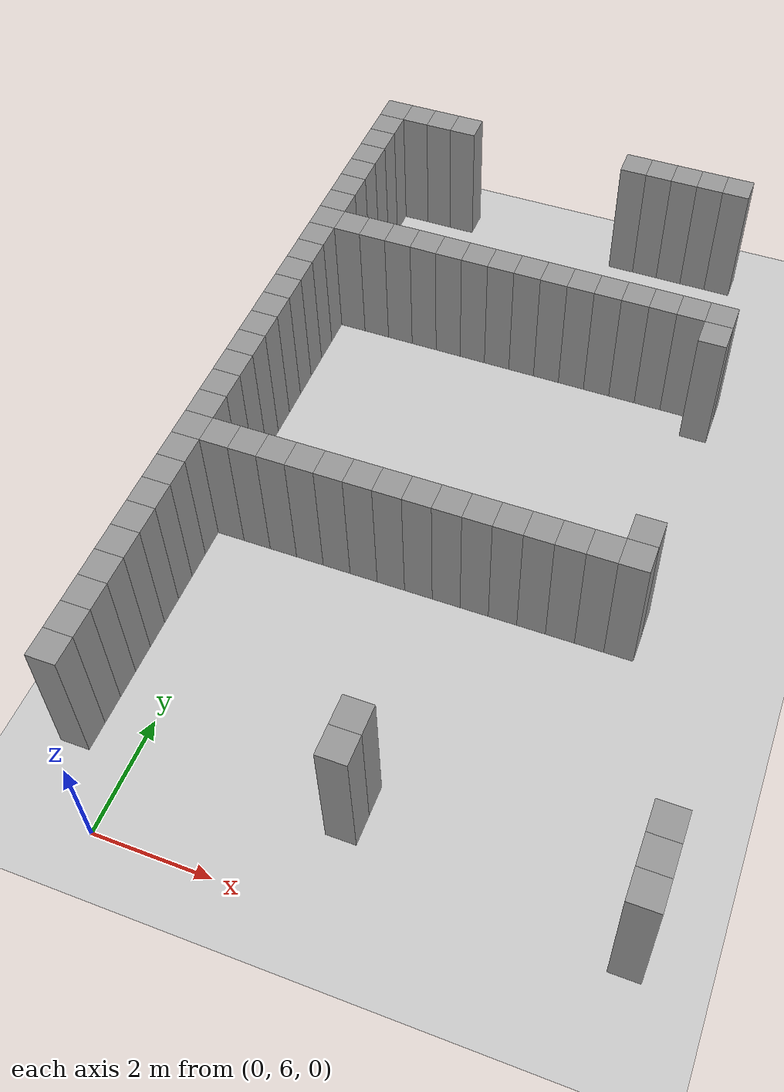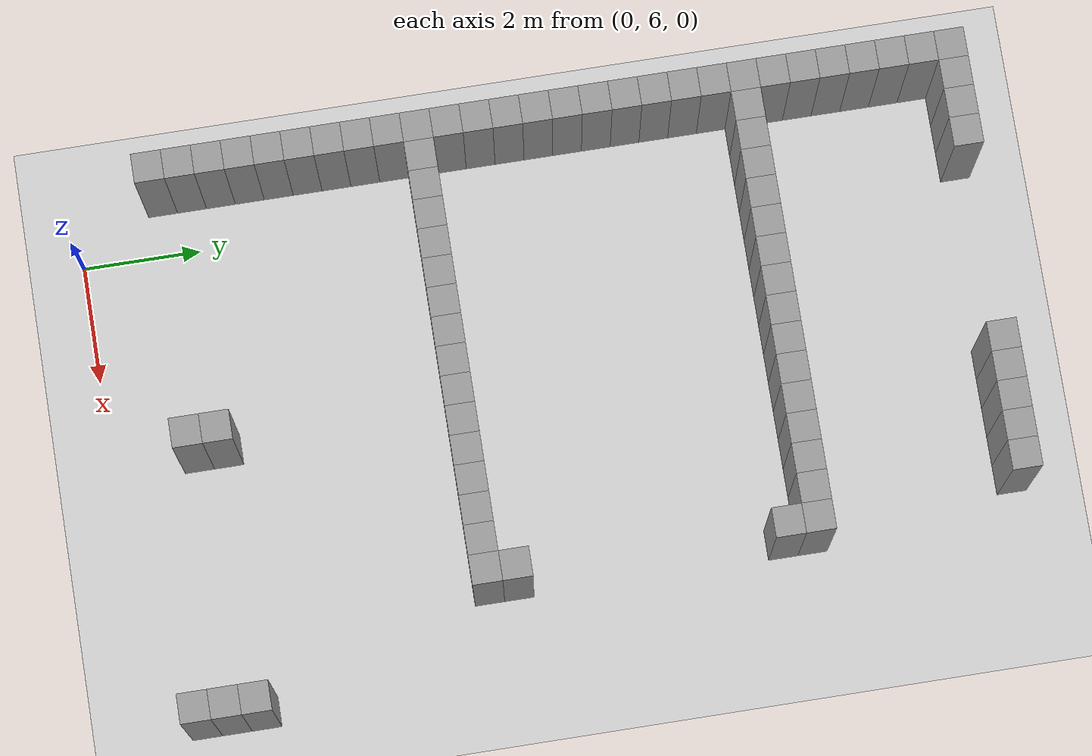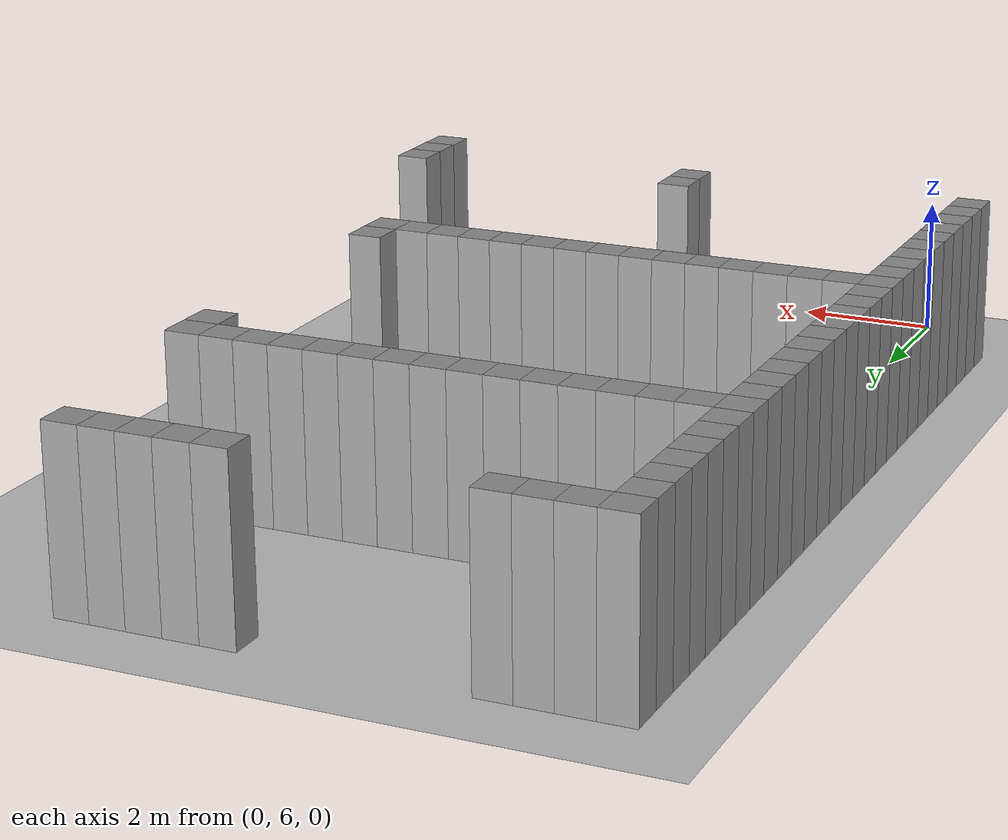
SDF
<sdf version="1.7">
 <world name="default">
  <model name="ground_plane">
   <static>1</static>
   <link name="link">
    <collision name="collision">
     <geometry><plane><normal>0 0 1</normal><size>100 100</size></plane></geometry>
     <surface>
      <contact><collide_bitmask>65535</collide_bitmask></contact>
      <friction><ode><mu>100</mu><mu2>50</mu2></ode></friction>
     </surface>
    </collision>
    <visual name="visual">
     <cast_shadows>0</cast_shadows>
     <geometry><plane><normal>0 0 1</normal><size>100 100</size></plane></geometry>
     <material>
      <script><uri>file://media/materials/scripts/gazebo.material</uri><name>Gazebo/Grey</name></script>
     </material>
    </visual>
   </link>
  </model>
  <model name="image1">
   <pose>-0.980925 -1.04264 0 0 -0 0</pose>
   <link name="Wall_17">
    <collision name="Wall_17_Collision">
     <geometry><box><size>0.5 0.5 2.5</size></box></geometry>
     <pose>0 0 1.25 0 -0 0</pose>
    </collision>
    <visual name="Wall_17_Visual">
     <pose>0 0 1.25 0 -0 0</pose>
     <geometry><box><size>0.5 0.5 2.5</size></box></geometry>
     <material>
      <script><uri>file://media/materials/scripts/gazebo.material</uri><name>Gazebo/Grey</name></script>
      <ambient>1 1 1 1</ambient>
     </material>
     <meta><layer>0</layer></meta>
    </visual>
    <pose>0 8.5 0 0 -0 0</pose>
   </link>
   <link name="Wall_18">
    <collision name="Wall_18_Collision">
     <geometry><box><size>0.5 0.5 2.5</size></box></geometry>
     <pose>0 0 1.25 0 -0 0</pose>
    </collision>
    <visual name="Wall_18_Visual">
     <pose>0 0 1.25 0 -0 0</pose>
     <geometry><box><size>0.5 0.5 2.5</size></box></geometry>
     <material>
      <script><uri>file://media/materials/scripts/gazebo.material</uri><name>Gazebo/Grey</name></script>
      <ambient>1 1 1 1</ambient>
     </material>
     <meta><layer>0</layer></meta>
    </visual>
    <pose>0 9 0 0 -0 0</pose>
   </link>
   <link name="Wall_19">
    <collision name="Wall_19_Collision">
     <geometry><box><size>0.5 0.5 2.5</size></box></geometry>
     <pose>0 0 1.25 0 -0 0</pose>
    </collision>
    <visual name="Wall_19_Visual">
     <pose>0 0 1.25 0 -0 0</pose>
     <geometry><box><size>0.5 0.5 2.5</size></box></geometry>
     <material>
      <script><uri>file://media/materials/scripts/gazebo.material</uri><name>Gazebo/Grey</name></script>
      <ambient>1 1 1 1</ambient>
     </material>
     <meta><layer>0</layer></meta>
    </visual>
    <pose>0 9.5 0 0 -0 0</pose>
   </link>
   <link name="Wall_20">
    <collision name="Wall_20_Collision">
     <geometry><box><size>0.5 0.5 2.5</size></box></geometry>
     <pose>0 0 1.25 0 -0 0</pose>
    </collision>
    <visual name="Wall_20_Visual">
     <pose>0 0 1.25 0 -0 0</pose>
     <geometry><box><size>0.5 0.5 2.5</size></box></geometry>
     <material>
      <script><uri>file://media/materials/scripts/gazebo.material</uri><name>Gazebo/Grey</name></script>
      <ambient>1 1 1 1</ambient>
     </material>
     <meta><layer>0</layer></meta>
    </visual>
    <pose>0 10 0 0 -0 0</pose>
   </link>
   <link name="Wall_21">
    <collision name="Wall_21_Collision">
     <geometry><box><size>0.5 0.5 2.5</size></box></geometry>
     <pose>0 0 1.25 0 -0 0</pose>
    </collision>
    <visual name="Wall_21_Visual">
     <pose>0 0 1.25 0 -0 0</pose>
     <geometry><box><size>0.5 0.5 2.5</size></box></geometry>
     <material>
      <script><uri>file://media/materials/scripts/gazebo.material</uri><name>Gazebo/Grey</name></script>
      <ambient>1 1 1 1</ambient>
     </material>
     <meta><layer>0</layer></meta>
    </visual>
    <pose>0 10.5 0 0 -0 0</pose>
   </link>
   <link name="Wall_22">
    <collision name="Wall_22_Collision">
     <geometry><box><size>0.5 0.5 2.5</size></box></geometry>
     <pose>0 0 1.25 0 -0 0</pose>
    </collision>
    <visual name="Wall_22_Visual">
     <pose>0 0 1.25 0 -0 0</pose>
     <geometry><box><size>0.5 0.5 2.5</size></box></geometry>
     <material>
      <script><uri>file://media/materials/scripts/gazebo.material</uri><name>Gazebo/Grey</name></script>
      <ambient>1 1 1 1</ambient>
     </material>
     <meta><layer>0</layer></meta>
    </visual>
    <pose>0 11 0 0 -0 0</pose>
   </link>
   <link name="Wall_23">
    <collision name="Wall_23_Collision">
     <geometry><box><size>0.5 0.5 2.5</size></box></geometry>
     <pose>0 0 1.25 0 -0 0</pose>
    </collision>
    <visual name="Wall_23_Visual">
     <pose>0 0 1.25 0 -0 0</pose>
     <geometry><box><size>0.5 0.5 2.5</size></box></geometry>
     <material>
      <script><uri>file://media/materials/scripts/gazebo.material</uri><name>Gazebo/Grey</name></script>
      <ambient>1 1 1 1</ambient>
     </material>
     <meta><layer>0</layer></meta>
    </visual>
    <pose>0 11.5 0 0 -0 0</pose>
   </link>
   <link name="Wall_24">
    <collision name="Wall_24_Collision">
     <geometry><box><size>0.5 0.5 2.5</size></box></geometry>
     <pose>0 0 1.25 0 -0 0</pose>
    </collision>
    <visual name="Wall_24_Visual">
     <pose>0 0 1.25 0 -0 0</pose>
     <geometry><box><size>0.5 0.5 2.5</size></box></geometry>
     <material>
      <script><uri>file://media/materials/scripts/gazebo.material</uri><name>Gazebo/Grey</name></script>
      <ambient>1 1 1 1</ambient>
     </material>
     <meta><layer>0</layer></meta>
    </visual>
    <pose>0 12 0 0 -0 0</pose>
   </link>
   <link name="Wall_25">
    <collision name="Wall_25_Collision">
     <geometry><box><size>0.5 0.5 2.5</size></box></geometry>
     <pose>0 0 1.25 0 -0 0</pose>
    </collision>
    <visual name="Wall_25_Visual">
     <pose>0 0 1.25 0 -0 0</pose>
     <geometry><box><size>0.5 0.5 2.5</size></box></geometry>
     <material>
      <script><uri>file://media/materials/scripts/gazebo.material</uri><name>Gazebo/Grey</name></script>
      <ambient>1 1 1 1</ambient>
     </material>
     <meta><layer>0</layer></meta>
    </visual>
    <pose>0 12.5 0 0 -0 0</pose>
   </link>
   <link name="Wall_26">
    <collision name="Wall_26_Collision">
     <geometry><box><size>0.5 0.5 2.5</size></box></geometry>
     <pose>0 0 1.25 0 -0 0</pose>
    </collision>
    <visual name="Wall_26_Visual">
     <pose>0 0 1.25 0 -0 0</pose>
     <geometry><box><size>0.5 0.5 2.5</size></box></geometry>
     <material>
      <script><uri>file://media/materials/scripts/gazebo.material</uri><name>Gazebo/Grey</name></script>
      <ambient>1 1 1 1</ambient>
     </material>
     <meta><layer>0</layer></meta>
    </visual>
    <pose>0 13 0 0 -0 0</pose>
   </link>
   <link name="Wall_27">
    <collision name="Wall_27_Collision">
     <geometry><box><size>0.5 0.5 2.5</size></box></geometry>
     <pose>0 0 1.25 0 -0 0</pose>
    </collision>
    <visual name="Wall_27_Visual">
     <pose>0 0 1.25 0 -0 0</pose>
     <geometry><box><size>0.5 0.5 2.5</size></box></geometry>
     <material>
      <script><uri>file://media/materials/scripts/gazebo.material</uri><name>Gazebo/Grey</name></script>
      <ambient>1 1 1 1</ambient>
     </material>
     <meta><layer>0</layer></meta>
    </visual>
    <pose>0 13.5 0 0 -0 0</pose>
   </link>
   <link name="Wall_28">
    <collision name="Wall_28_Collision">
     <geometry><box><size>0.5 0.5 2.5</size></box></geometry>
     <pose>0 0 1.25 0 -0 0</pose>
    </collision>
    <visual name="Wall_28_Visual">
     <pose>0 0 1.25 0 -0 0</pose>
     <geometry><box><size>0.5 0.5 2.5</size></box></geometry>
     <material>
      <script><uri>file://media/materials/scripts/gazebo.material</uri><name>Gazebo/Grey</name></script>
      <ambient>1 1 1 1</ambient>
     </material>
     <meta><layer>0</layer></meta>
    </visual>
    <pose>0 14 0 0 -0 0</pose>
   </link>
   <link name="Wall_29">
    <collision name="Wall_29_Collision">
     <geometry><box><size>0.5 0.5 2.5</size></box></geometry>
     <pose>0 0 1.25 0 -0 0</pose>
    </collision>
    <visual name="Wall_29_Visual">
     <pose>0 0 1.25 0 -0 0</pose>
     <geometry><box><size>0.5 0.5 2.5</size></box></geometry>
     <material>
      <script><uri>file://media/materials/scripts/gazebo.material</uri><name>Gazebo/Grey</name></script>
      <ambient>1 1 1 1</ambient>
     </material>
     <meta><layer>0</layer></meta>
    </visual>
    <pose>0 14.5 0 0 -0 0</pose>
   </link>
   <link name="Wall_30">
    <collision name="Wall_30_Collision">
     <geometry><box><size>0.5 0.5 2.5</size></box></geometry>
     <pose>0 0 1.25 0 -0 0</pose>
    </collision>
    <visual name="Wall_30_Visual">
     <pose>0 0 1.25 0 -0 0</pose>
     <geometry><box><size>0.5 0.5 2.5</size></box></geometry>
     <material>
      <script><uri>file://media/materials/scripts/gazebo.material</uri><name>Gazebo/Grey</name></script>
      <ambient>1 1 1 1</ambient>
     </material>
     <meta><layer>0</layer></meta>
    </visual>
    <pose>0 15 0 0 -0 0</pose>
   </link>
   <link name="Wall_31">
    <collision name="Wall_31_Collision">
     <geometry><box><size>0.5 0.5 2.5</size></box></geometry>
     <pose>0 0 1.25 0 -0 0</pose>
    </collision>
    <visual name="Wall_31_Visual">
     <pose>0 0 1.25 0 -0 0</pose>
     <geometry><box><size>0.5 0.5 2.5</size></box></geometry>
     <material>
      <script><uri>file://media/materials/scripts/gazebo.material</uri><name>Gazebo/Grey</name></script>
      <ambient>1 1 1 1</ambient>
     </material>
     <meta><layer>0</layer></meta>
    </visual>
    <pose>0 15.5 0 0 -0 0</pose>
   </link>
   <link name="Wall_32">
    <collision name="Wall_32_Collision">
     <geometry><box><size>0.5 0.5 2.5</size></box></geometry>
     <pose>0 0 1.25 0 -0 0</pose>
    </collision>
    <visual name="Wall_32_Visual">
     <pose>0 0 1.25 0 -0 0</pose>
     <geometry><box><size>0.5 0.5 2.5</size></box></geometry>
     <material>
      <script><uri>file://media/materials/scripts/gazebo.material</uri><name>Gazebo/Grey</name></script>
      <ambient>1 1 1 1</ambient>
     </material>
     <meta><layer>0</layer></meta>
    </visual>
    <pose>0 16 0 0 -0 0</pose>
   </link>
   <link name="Wall_33">
    <collision name="Wall_33_Collision">
     <geometry><box><size>0.5 0.5 2.5</size></box></geometry>
     <pose>0 0 1.25 0 -0 0</pose>
    </collision>
    <visual name="Wall_33_Visual">
     <pose>0 0 1.25 0 -0 0</pose>
     <geometry><box><size>0.5 0.5 2.5</size></box></geometry>
     <material>
      <script><uri>file://media/materials/scripts/gazebo.material</uri><name>Gazebo/Grey</name></script>
      <ambient>1 1 1 1</ambient>
     </material>
     <meta><layer>0</layer></meta>
    </visual>
    <pose>0 16.5 0 0 -0 0</pose>
   </link>
   <link name="Wall_34">
    <collision name="Wall_34_Collision">
     <geometry><box><size>0.5 0.5 2.5</size></box></geometry>
     <pose>0 0 1.25 0 -0 0</pose>
    </collision>
    <visual name="Wall_34_Visual">
     <pose>0 0 1.25 0 -0 0</pose>
     <geometry><box><size>0.5 0.5 2.5</size></box></geometry>
     <material>
      <script><uri>file://media/materials/scripts/gazebo.material</uri><name>Gazebo/Grey</name></script>
      <ambient>1 1 1 1</ambient>
     </material>
     <meta><layer>0</layer></meta>
    </visual>
    <pose>0 17 0 0 -0 0</pose>
   </link>
   <link name="Wall_35">
    <collision name="Wall_35_Collision">
     <geometry><box><size>0.5 0.5 2.5</size></box></geometry>
     <pose>0 0 1.25 0 -0 0</pose>
    </collision>
    <visual name="Wall_35_Visual">
     <pose>0 0 1.25 0 -0 0</pose>
     <geometry><box><size>0.5 0.5 2.5</size></box></geometry>
     <material>
      <script><uri>file://media/materials/scripts/gazebo.material</uri><name>Gazebo/Grey</name></script>
      <ambient>1 1 1 1</ambient>
     </material>
     <meta><layer>0</layer></meta>
    </visual>
    <pose>0 17.5 0 0 -0 0</pose>
   </link>
   <link name="Wall_36">
    <collision name="Wall_36_Collision">
     <geometry><box><size>0.5 0.5 2.5</size></box></geometry>
     <pose>0 0 1.25 0 -0 0</pose>
    </collision>
    <visual name="Wall_36_Visual">
     <pose>0 0 1.25 0 -0 0</pose>
     <geometry><box><size>0.5 0.5 2.5</size></box></geometry>
     <material>
      <script><uri>file://media/materials/scripts/gazebo.material</uri><name>Gazebo/Grey</name></script>
      <ambient>1 1 1 1</ambient>
     </material>
     <meta><layer>0</layer></meta>
    </visual>
    <pose>0 18 0 0 -0 0</pose>
   </link>
   <link name="Wall_37">
    <collision name="Wall_37_Collision">
     <geometry><box><size>0.5 0.5 2.5</size></box></geometry>
     <pose>0 0 1.25 0 -0 0</pose>
    </collision>
    <visual name="Wall_37_Visual">
     <pose>0 0 1.25 0 -0 0</pose>
     <geometry><box><size>0.5 0.5 2.5</size></box></geometry>
     <material>
      <script><uri>file://media/materials/scripts/gazebo.material</uri><name>Gazebo/Grey</name></script>
      <ambient>1 1 1 1</ambient>
     </material>
     <meta><layer>0</layer></meta>
    </visual>
    <pose>0 18.5 0 0 -0 0</pose>
   </link>
   <link name="Wall_38">
    <collision name="Wall_38_Collision">
     <geometry><box><size>0.5 0.5 2.5</size></box></geometry>
     <pose>0 0 1.25 0 -0 0</pose>
    </collision>
    <visual name="Wall_38_Visual">
     <pose>0 0 1.25 0 -0 0</pose>
     <geometry><box><size>0.5 0.5 2.5</size></box></geometry>
     <material>
      <script><uri>file://media/materials/scripts/gazebo.material</uri><name>Gazebo/Grey</name></script>
      <ambient>1 1 1 1</ambient>
     </material>
     <meta><layer>0</layer></meta>
    </visual>
    <pose>0 19 0 0 -0 0</pose>
   </link>
   <link name="Wall_39">
    <collision name="Wall_39_Collision">
     <geometry><box><size>0.5 0.5 2.5</size></box></geometry>
     <pose>0 0 1.25 0 -0 0</pose>
    </collision>
    <visual name="Wall_39_Visual">
     <pose>0 0 1.25 0 -0 0</pose>
     <geometry><box><size>0.5 0.5 2.5</size></box></geometry>
     <material>
      <script><uri>file://media/materials/scripts/gazebo.material</uri><name>Gazebo/Grey</name></script>
      <ambient>1 1 1 1</ambient>
     </material>
     <meta><layer>0</layer></meta>
    </visual>
    <pose>0 19.5 0 0 -0 0</pose>
   </link>
   <link name="Wall_40">
    <collision name="Wall_40_Collision">
     <geometry><box><size>0.5 0.5 2.5</size></box></geometry>
     <pose>0 0 1.25 0 -0 0</pose>
    </collision>
    <visual name="Wall_40_Visual">
     <pose>0 0 1.25 0 -0 0</pose>
     <geometry><box><size>0.5 0.5 2.5</size></box></geometry>
     <material>
      <script><uri>file://media/materials/scripts/gazebo.material</uri><name>Gazebo/Grey</name></script>
      <ambient>1 1 1 1</ambient>
     </material>
     <meta><layer>0</layer></meta>
    </visual>
    <pose>0 20 0 0 -0 0</pose>
   </link>
   <link name="Wall_41">
    <collision name="Wall_41_Collision">
     <geometry><box><size>0.5 0.5 2.5</size></box></geometry>
     <pose>0 0 1.25 0 -0 0</pose>
    </collision>
    <visual name="Wall_41_Visual">
     <pose>0 0 1.25 0 -0 0</pose>
     <geometry><box><size>0.5 0.5 2.5</size></box></geometry>
     <material>
      <script><uri>file://media/materials/scripts/gazebo.material</uri><name>Gazebo/Grey</name></script>
      <ambient>1 1 1 1</ambient>
     </material>
     <meta><layer>0</layer></meta>
    </visual>
    <pose>0 20.5 0 0 -0 0</pose>
   </link>
   <link name="Wall_42">
    <collision name="Wall_42_Collision">
     <geometry><box><size>0.5 0.5 2.5</size></box></geometry>
     <pose>0 0 1.25 0 -0 0</pose>
    </collision>
    <visual name="Wall_42_Visual">
     <pose>0 0 1.25 0 -0 0</pose>
     <geometry><box><size>0.5 0.5 2.5</size></box></geometry>
     <material>
      <script><uri>file://media/materials/scripts/gazebo.material</uri><name>Gazebo/Grey</name></script>
      <ambient>1 1 1 1</ambient>
     </material>
     <meta><layer>0</layer></meta>
    </visual>
    <pose>0 21 0 0 -0 0</pose>
   </link>
   <link name="Wall_43">
    <collision name="Wall_43_Collision">
     <geometry><box><size>0.5 0.5 2.5</size></box></geometry>
     <pose>0 0 1.25 0 -0 0</pose>
    </collision>
    <visual name="Wall_43_Visual">
     <pose>0 0 1.25 0 -0 0</pose>
     <geometry><box><size>0.5 0.5 2.5</size></box></geometry>
     <material>
      <script><uri>file://media/materials/scripts/gazebo.material</uri><name>Gazebo/Grey</name></script>
      <ambient>1 1 1 1</ambient>
     </material>
     <meta><layer>0</layer></meta>
    </visual>
    <pose>0 21.5 0 0 -0 0</pose>
   </link>
   <link name="Wall_44">
    <collision name="Wall_44_Collision">
     <geometry><box><size>0.5 0.5 2.5</size></box></geometry>
     <pose>0 0 1.25 0 -0 0</pose>
    </collision>
    <visual name="Wall_44_Visual">
     <pose>0 0 1.25 0 -0 0</pose>
     <geometry><box><size>0.5 0.5 2.5</size></box></geometry>
     <material>
      <script><uri>file://media/materials/scripts/gazebo.material</uri><name>Gazebo/Grey</name></script>
      <ambient>1 1 1 1</ambient>
     </material>
     <meta><layer>0</layer></meta>
    </visual>
    <pose>0 22 0 0 -0 0</pose>
   </link>
   <link name="Wall_61">
    <collision name="Wall_61_Collision">
     <geometry><box><size>0.5 0.5 2.5</size></box></geometry>
     <pose>0 0 1.25 0 -0 0</pose>
    </collision>
    <visual name="Wall_61_Visual">
     <pose>0 0 1.25 0 -0 0</pose>
     <geometry><box><size>0.5 0.5 2.5</size></box></geometry>
     <material>
      <script><uri>file://media/materials/scripts/gazebo.material</uri><name>Gazebo/Grey</name></script>
      <ambient>1 1 1 1</ambient>
     </material>
     <meta><layer>0</layer></meta>
    </visual>
    <pose>0.5 13 0 0 -0 0</pose>
   </link>
   <link name="Wall_62">
    <collision name="Wall_62_Collision">
     <geometry><box><size>0.5 0.5 2.5</size></box></geometry>
     <pose>0 0 1.25 0 -0 0</pose>
    </collision>
    <visual name="Wall_62_Visual">
     <pose>0 0 1.25 0 -0 0</pose>
     <geometry><box><size>0.5 0.5 2.5</size></box></geometry>
     <material>
      <script><uri>file://media/materials/scripts/gazebo.material</uri><name>Gazebo/Grey</name></script>
      <ambient>1 1 1 1</ambient>
     </material>
     <meta><layer>0</layer></meta>
    </visual>
    <pose>0.5 18.5 0 0 -0 0</pose>
   </link>
   <link name="Wall_63">
    <collision name="Wall_63_Collision">
     <geometry><box><size>0.5 0.5 2.5</size></box></geometry>
     <pose>0 0 1.25 0 -0 0</pose>
    </collision>
    <visual name="Wall_63_Visual">
     <pose>0 0 1.25 0 -0 0</pose>
     <geometry><box><size>0.5 0.5 2.5</size></box></geometry>
     <material>
      <script><uri>file://media/materials/scripts/gazebo.material</uri><name>Gazebo/Grey</name></script>
      <ambient>1 1 1 1</ambient>
     </material>
     <meta><layer>0</layer></meta>
    </visual>
    <pose>0.5 22 0 0 -0 0</pose>
   </link>
   <link name="Wall_66">
    <collision name="Wall_66_Collision">
     <geometry><box><size>0.5 0.5 2.5</size></box></geometry>
     <pose>0 0 1.25 0 -0 0</pose>
    </collision>
    <visual name="Wall_66_Visual">
     <pose>0 0 1.25 0 -0 0</pose>
     <geometry><box><size>0.5 0.5 2.5</size></box></geometry>
     <material>
      <script><uri>file://media/materials/scripts/gazebo.material</uri><name>Gazebo/Grey</name></script>
      <ambient>1 1 1 1</ambient>
     </material>
     <meta><layer>0</layer></meta>
    </visual>
    <pose>1 13 0 0 -0 0</pose>
   </link>
   <link name="Wall_67">
    <collision name="Wall_67_Collision">
     <geometry><box><size>0.5 0.5 2.5</size></box></geometry>
     <pose>0 0 1.25 0 -0 0</pose>
    </collision>
    <visual name="Wall_67_Visual">
     <pose>0 0 1.25 0 -0 0</pose>
     <geometry><box><size>0.5 0.5 2.5</size></box></geometry>
     <material>
      <script><uri>file://media/materials/scripts/gazebo.material</uri><name>Gazebo/Grey</name></script>
      <ambient>1 1 1 1</ambient>
     </material>
     <meta><layer>0</layer></meta>
    </visual>
    <pose>1 18.5 0 0 -0 0</pose>
   </link>
   <link name="Wall_68">
    <collision name="Wall_68_Collision">
     <geometry><box><size>0.5 0.5 2.5</size></box></geometry>
     <pose>0 0 1.25 0 -0 0</pose>
    </collision>
    <visual name="Wall_68_Visual">
     <pose>0 0 1.25 0 -0 0</pose>
     <geometry><box><size>0.5 0.5 2.5</size></box></geometry>
     <material>
      <script><uri>file://media/materials/scripts/gazebo.material</uri><name>Gazebo/Grey</name></script>
      <ambient>1 1 1 1</ambient>
     </material>
     <meta><layer>0</layer></meta>
    </visual>
    <pose>1 22 0 0 -0 0</pose>
   </link>
   <link name="Wall_71">
    <collision name="Wall_71_Collision">
     <geometry><box><size>0.5 0.5 2.5</size></box></geometry>
     <pose>0 0 1.25 0 -0 0</pose>
    </collision>
    <visual name="Wall_71_Visual">
     <pose>0 0 1.25 0 -0 0</pose>
     <geometry><box><size>0.5 0.5 2.5</size></box></geometry>
     <material>
      <script><uri>file://media/materials/scripts/gazebo.material</uri><name>Gazebo/Grey</name></script>
      <ambient>1 1 1 1</ambient>
     </material>
     <meta><layer>0</layer></meta>
    </visual>
    <pose>1.5 13 0 0 -0 0</pose>
   </link>
   <link name="Wall_72">
    <collision name="Wall_72_Collision">
     <geometry><box><size>0.5 0.5 2.5</size></box></geometry>
     <pose>0 0 1.25 0 -0 0</pose>
    </collision>
    <visual name="Wall_72_Visual">
     <pose>0 0 1.25 0 -0 0</pose>
     <geometry><box><size>0.5 0.5 2.5</size></box></geometry>
     <material>
      <script><uri>file://media/materials/scripts/gazebo.material</uri><name>Gazebo/Grey</name></script>
      <ambient>1 1 1 1</ambient>
     </material>
     <meta><layer>0</layer></meta>
    </visual>
    <pose>1.5 18.5 0 0 -0 0</pose>
   </link>
   <link name="Wall_73">
    <collision name="Wall_73_Collision">
     <geometry><box><size>0.5 0.5 2.5</size></box></geometry>
     <pose>0 0 1.25 0 -0 0</pose>
    </collision>
    <visual name="Wall_73_Visual">
     <pose>0 0 1.25 0 -0 0</pose>
     <geometry><box><size>0.5 0.5 2.5</size></box></geometry>
     <material>
      <script><uri>file://media/materials/scripts/gazebo.material</uri><name>Gazebo/Grey</name></script>
      <ambient>1 1 1 1</ambient>
     </material>
     <meta><layer>0</layer></meta>
    </visual>
    <pose>1.5 22 0 0 -0 0</pose>
   </link>
   <link name="Wall_76">
    <collision name="Wall_76_Collision">
     <geometry><box><size>0.5 0.5 2.5</size></box></geometry>
     <pose>0 0 1.25 0 -0 0</pose>
    </collision>
    <visual name="Wall_76_Visual">
     <pose>0 0 1.25 0 -0 0</pose>
     <geometry><box><size>0.5 0.5 2.5</size></box></geometry>
     <material>
      <script><uri>file://media/materials/scripts/gazebo.material</uri><name>Gazebo/Grey</name></script>
      <ambient>1 1 1 1</ambient>
     </material>
     <meta><layer>0</layer></meta>
    </visual>
    <pose>2 13 0 0 -0 0</pose>
   </link>
   <link name="Wall_77">
    <collision name="Wall_77_Collision">
     <geometry><box><size>0.5 0.5 2.5</size></box></geometry>
     <pose>0 0 1.25 0 -0 0</pose>
    </collision>
    <visual name="Wall_77_Visual">
     <pose>0 0 1.25 0 -0 0</pose>
     <geometry><box><size>0.5 0.5 2.5</size></box></geometry>
     <material>
      <script><uri>file://media/materials/scripts/gazebo.material</uri><name>Gazebo/Grey</name></script>
      <ambient>1 1 1 1</ambient>
     </material>
     <meta><layer>0</layer></meta>
    </visual>
    <pose>2 18.5 0 0 -0 0</pose>
   </link>
   <link name="Wall_80">
    <collision name="Wall_80_Collision">
     <geometry><box><size>0.5 0.5 2.5</size></box></geometry>
     <pose>0 0 1.25 0 -0 0</pose>
    </collision>
    <visual name="Wall_80_Visual">
     <pose>0 0 1.25 0 -0 0</pose>
     <geometry><box><size>0.5 0.5 2.5</size></box></geometry>
     <material>
      <script><uri>file://media/materials/scripts/gazebo.material</uri><name>Gazebo/Grey</name></script>
      <ambient>1 1 1 1</ambient>
     </material>
     <meta><layer>0</layer></meta>
    </visual>
    <pose>2.5 13 0 0 -0 0</pose>
   </link>
   <link name="Wall_81">
    <collision name="Wall_81_Collision">
     <geometry><box><size>0.5 0.5 2.5</size></box></geometry>
     <pose>0 0 1.25 0 -0 0</pose>
    </collision>
    <visual name="Wall_81_Visual">
     <pose>0 0 1.25 0 -0 0</pose>
     <geometry><box><size>0.5 0.5 2.5</size></box></geometry>
     <material>
      <script><uri>file://media/materials/scripts/gazebo.material</uri><name>Gazebo/Grey</name></script>
      <ambient>1 1 1 1</ambient>
     </material>
     <meta><layer>0</layer></meta>
    </visual>
    <pose>2.5 18.5 0 0 -0 0</pose>
   </link>
   <link name="Wall_84">
    <collision name="Wall_84_Collision">
     <geometry><box><size>0.5 0.5 2.5</size></box></geometry>
     <pose>0 0 1.25 0 -0 0</pose>
    </collision>
    <visual name="Wall_84_Visual">
     <pose>0 0 1.25 0 -0 0</pose>
     <geometry><box><size>0.5 0.5 2.5</size></box></geometry>
     <material>
      <script><uri>file://media/materials/scripts/gazebo.material</uri><name>Gazebo/Grey</name></script>
      <ambient>1 1 1 1</ambient>
     </material>
     <meta><layer>0</layer></meta>
    </visual>
    <pose>3 13 0 0 -0 0</pose>
   </link>
   <link name="Wall_85">
    <collision name="Wall_85_Collision">
     <geometry><box><size>0.5 0.5 2.5</size></box></geometry>
     <pose>0 0 1.25 0 -0 0</pose>
    </collision>
    <visual name="Wall_85_Visual">
     <pose>0 0 1.25 0 -0 0</pose>
     <geometry><box><size>0.5 0.5 2.5</size></box></geometry>
     <material>
      <script><uri>file://media/materials/scripts/gazebo.material</uri><name>Gazebo/Grey</name></script>
      <ambient>1 1 1 1</ambient>
     </material>
     <meta><layer>0</layer></meta>
    </visual>
    <pose>3 18.5 0 0 -0 0</pose>
   </link>
   <link name="Wall_88">
    <collision name="Wall_88_Collision">
     <geometry><box><size>0.5 0.5 2.5</size></box></geometry>
     <pose>0 0 1.25 0 -0 0</pose>
    </collision>
    <visual name="Wall_88_Visual">
     <pose>0 0 1.25 0 -0 0</pose>
     <geometry><box><size>0.5 0.5 2.5</size></box></geometry>
     <material>
      <script><uri>file://media/materials/scripts/gazebo.material</uri><name>Gazebo/Grey</name></script>
      <ambient>1 1 1 1</ambient>
     </material>
     <meta><layer>0</layer></meta>
    </visual>
    <pose>3.5 13 0 0 -0 0</pose>
   </link>
   <link name="Wall_89">
    <collision name="Wall_89_Collision">
     <geometry><box><size>0.5 0.5 2.5</size></box></geometry>
     <pose>0 0 1.25 0 -0 0</pose>
    </collision>
    <visual name="Wall_89_Visual">
     <pose>0 0 1.25 0 -0 0</pose>
     <geometry><box><size>0.5 0.5 2.5</size></box></geometry>
     <material>
      <script><uri>file://media/materials/scripts/gazebo.material</uri><name>Gazebo/Grey</name></script>
      <ambient>1 1 1 1</ambient>
     </material>
     <meta><layer>0</layer></meta>
    </visual>
    <pose>3.5 18.5 0 0 -0 0</pose>
   </link>
   <link name="Wall_92">
    <collision name="Wall_92_Collision">
     <geometry><box><size>0.5 0.5 2.5</size></box></geometry>
     <pose>0 0 1.25 0 -0 0</pose>
    </collision>
    <visual name="Wall_92_Visual">
     <pose>0 0 1.25 0 -0 0</pose>
     <geometry><box><size>0.5 0.5 2.5</size></box></geometry>
     <material>
      <script><uri>file://media/materials/scripts/gazebo.material</uri><name>Gazebo/Grey</name></script>
      <ambient>1 1 1 1</ambient>
     </material>
     <meta><layer>0</layer></meta>
    </visual>
    <pose>4 13 0 0 -0 0</pose>
   </link>
   <link name="Wall_93">
    <collision name="Wall_93_Collision">
     <geometry><box><size>0.5 0.5 2.5</size></box></geometry>
     <pose>0 0 1.25 0 -0 0</pose>
    </collision>
    <visual name="Wall_93_Visual">
     <pose>0 0 1.25 0 -0 0</pose>
     <geometry><box><size>0.5 0.5 2.5</size></box></geometry>
     <material>
      <script><uri>file://media/materials/scripts/gazebo.material</uri><name>Gazebo/Grey</name></script>
      <ambient>1 1 1 1</ambient>
     </material>
     <meta><layer>0</layer></meta>
    </visual>
    <pose>4 18.5 0 0 -0 0</pose>
   </link>
   <link name="Wall_112">
    <collision name="Wall_112_Collision">
     <geometry><box><size>0.5 0.5 2.5</size></box></geometry>
     <pose>0 0 1.25 0 -0 0</pose>
    </collision>
    <visual name="Wall_112_Visual">
     <pose>0 0 1.25 0 -0 0</pose>
     <geometry><box><size>0.5 0.5 2.5</size></box></geometry>
     <material>
      <script><uri>file://media/materials/scripts/gazebo.material</uri><name>Gazebo/Grey</name></script>
      <ambient>1 1 1 1</ambient>
     </material>
     <meta><layer>0</layer></meta>
    </visual>
    <pose>4.5 8.5 0 0 -0 0</pose>
   </link>
   <link name="Wall_113">
    <collision name="Wall_113_Collision">
     <geometry><box><size>0.5 0.5 2.5</size></box></geometry>
     <pose>0 0 1.25 0 -0 0</pose>
    </collision>
    <visual name="Wall_113_Visual">
     <pose>0 0 1.25 0 -0 0</pose>
     <geometry><box><size>0.5 0.5 2.5</size></box></geometry>
     <material>
      <script><uri>file://media/materials/scripts/gazebo.material</uri><name>Gazebo/Grey</name></script>
      <ambient>1 1 1 1</ambient>
     </material>
     <meta><layer>0</layer></meta>
    </visual>
    <pose>4.5 9 0 0 -0 0</pose>
   </link>
   <link name="Wall_114">
    <collision name="Wall_114_Collision">
     <geometry><box><size>0.5 0.5 2.5</size></box></geometry>
     <pose>0 0 1.25 0 -0 0</pose>
    </collision>
    <visual name="Wall_114_Visual">
     <pose>0 0 1.25 0 -0 0</pose>
     <geometry><box><size>0.5 0.5 2.5</size></box></geometry>
     <material>
      <script><uri>file://media/materials/scripts/gazebo.material</uri><name>Gazebo/Grey</name></script>
      <ambient>1 1 1 1</ambient>
     </material>
     <meta><layer>0</layer></meta>
    </visual>
    <pose>4.5 13 0 0 -0 0</pose>
   </link>
   <link name="Wall_115">
    <collision name="Wall_115_Collision">
     <geometry><box><size>0.5 0.5 2.5</size></box></geometry>
     <pose>0 0 1.25 0 -0 0</pose>
    </collision>
    <visual name="Wall_115_Visual">
     <pose>0 0 1.25 0 -0 0</pose>
     <geometry><box><size>0.5 0.5 2.5</size></box></geometry>
     <material>
      <script><uri>file://media/materials/scripts/gazebo.material</uri><name>Gazebo/Grey</name></script>
      <ambient>1 1 1 1</ambient>
     </material>
     <meta><layer>0</layer></meta>
    </visual>
    <pose>4.5 18.5 0 0 -0 0</pose>
   </link>
   <link name="Wall_118">
    <collision name="Wall_118_Collision">
     <geometry><box><size>0.5 0.5 2.5</size></box></geometry>
     <pose>0 0 1.25 0 -0 0</pose>
    </collision>
    <visual name="Wall_118_Visual">
     <pose>0 0 1.25 0 -0 0</pose>
     <geometry><box><size>0.5 0.5 2.5</size></box></geometry>
     <material>
      <script><uri>file://media/materials/scripts/gazebo.material</uri><name>Gazebo/Grey</name></script>
      <ambient>1 1 1 1</ambient>
     </material>
     <meta><layer>0</layer></meta>
    </visual>
    <pose>5 13 0 0 -0 0</pose>
   </link>
   <link name="Wall_119">
    <collision name="Wall_119_Collision">
     <geometry><box><size>0.5 0.5 2.5</size></box></geometry>
     <pose>0 0 1.25 0 -0 0</pose>
    </collision>
    <visual name="Wall_119_Visual">
     <pose>0 0 1.25 0 -0 0</pose>
     <geometry><box><size>0.5 0.5 2.5</size></box></geometry>
     <material>
      <script><uri>file://media/materials/scripts/gazebo.material</uri><name>Gazebo/Grey</name></script>
      <ambient>1 1 1 1</ambient>
     </material>
     <meta><layer>0</layer></meta>
    </visual>
    <pose>5 18.5 0 0 -0 0</pose>
   </link>
   <link name="Wall_120">
    <collision name="Wall_120_Collision">
     <geometry><box><size>0.5 0.5 2.5</size></box></geometry>
     <pose>0 0 1.25 0 -0 0</pose>
    </collision>
    <visual name="Wall_120_Visual">
     <pose>0 0 1.25 0 -0 0</pose>
     <geometry><box><size>0.5 0.5 2.5</size></box></geometry>
     <material>
      <script><uri>file://media/materials/scripts/gazebo.material</uri><name>Gazebo/Grey</name></script>
      <ambient>1 1 1 1</ambient>
     </material>
     <meta><layer>0</layer></meta>
    </visual>
    <pose>5 22 0 0 -0 0</pose>
   </link>
   <link name="Wall_123">
    <collision name="Wall_123_Collision">
     <geometry><box><size>0.5 0.5 2.5</size></box></geometry>
     <pose>0 0 1.25 0 -0 0</pose>
    </collision>
    <visual name="Wall_123_Visual">
     <pose>0 0 1.25 0 -0 0</pose>
     <geometry><box><size>0.5 0.5 2.5</size></box></geometry>
     <material>
      <script><uri>file://media/materials/scripts/gazebo.material</uri><name>Gazebo/Grey</name></script>
      <ambient>1 1 1 1</ambient>
     </material>
     <meta><layer>0</layer></meta>
    </visual>
    <pose>5.5 13 0 0 -0 0</pose>
   </link>
   <link name="Wall_124">
    <collision name="Wall_124_Collision">
     <geometry><box><size>0.5 0.5 2.5</size></box></geometry>
     <pose>0 0 1.25 0 -0 0</pose>
    </collision>
    <visual name="Wall_124_Visual">
     <pose>0 0 1.25 0 -0 0</pose>
     <geometry><box><size>0.5 0.5 2.5</size></box></geometry>
     <material>
      <script><uri>file://media/materials/scripts/gazebo.material</uri><name>Gazebo/Grey</name></script>
      <ambient>1 1 1 1</ambient>
     </material>
     <meta><layer>0</layer></meta>
    </visual>
    <pose>5.5 18.5 0 0 -0 0</pose>
   </link>
   <link name="Wall_125">
    <collision name="Wall_125_Collision">
     <geometry><box><size>0.5 0.5 2.5</size></box></geometry>
     <pose>0 0 1.25 0 -0 0</pose>
    </collision>
    <visual name="Wall_125_Visual">
     <pose>0 0 1.25 0 -0 0</pose>
     <geometry><box><size>0.5 0.5 2.5</size></box></geometry>
     <material>
      <script><uri>file://media/materials/scripts/gazebo.material</uri><name>Gazebo/Grey</name></script>
      <ambient>1 1 1 1</ambient>
     </material>
     <meta><layer>0</layer></meta>
    </visual>
    <pose>5.5 22 0 0 -0 0</pose>
   </link>
   <link name="Wall_128">
    <collision name="Wall_128_Collision">
     <geometry><box><size>0.5 0.5 2.5</size></box></geometry>
     <pose>0 0 1.25 0 -0 0</pose>
    </collision>
    <visual name="Wall_128_Visual">
     <pose>0 0 1.25 0 -0 0</pose>
     <geometry><box><size>0.5 0.5 2.5</size></box></geometry>
     <material>
      <script><uri>file://media/materials/scripts/gazebo.material</uri><name>Gazebo/Grey</name></script>
      <ambient>1 1 1 1</ambient>
     </material>
     <meta><layer>0</layer></meta>
    </visual>
    <pose>6 13 0 0 -0 0</pose>
   </link>
   <link name="Wall_129">
    <collision name="Wall_129_Collision">
     <geometry><box><size>0.5 0.5 2.5</size></box></geometry>
     <pose>0 0 1.25 0 -0 0</pose>
    </collision>
    <visual name="Wall_129_Visual">
     <pose>0 0 1.25 0 -0 0</pose>
     <geometry><box><size>0.5 0.5 2.5</size></box></geometry>
     <material>
      <script><uri>file://media/materials/scripts/gazebo.material</uri><name>Gazebo/Grey</name></script>
      <ambient>1 1 1 1</ambient>
     </material>
     <meta><layer>0</layer></meta>
    </visual>
    <pose>6 18.5 0 0 -0 0</pose>
   </link>
   <link name="Wall_130">
    <collision name="Wall_130_Collision">
     <geometry><box><size>0.5 0.5 2.5</size></box></geometry>
     <pose>0 0 1.25 0 -0 0</pose>
    </collision>
    <visual name="Wall_130_Visual">
     <pose>0 0 1.25 0 -0 0</pose>
     <geometry><box><size>0.5 0.5 2.5</size></box></geometry>
     <material>
      <script><uri>file://media/materials/scripts/gazebo.material</uri><name>Gazebo/Grey</name></script>
      <ambient>1 1 1 1</ambient>
     </material>
     <meta><layer>0</layer></meta>
    </visual>
    <pose>6 22 0 0 -0 0</pose>
   </link>
   <link name="Wall_133">
    <collision name="Wall_133_Collision">
     <geometry><box><size>0.5 0.5 2.5</size></box></geometry>
     <pose>0 0 1.25 0 -0 0</pose>
    </collision>
    <visual name="Wall_133_Visual">
     <pose>0 0 1.25 0 -0 0</pose>
     <geometry><box><size>0.5 0.5 2.5</size></box></geometry>
     <material>
      <script><uri>file://media/materials/scripts/gazebo.material</uri><name>Gazebo/Grey</name></script>
      <ambient>1 1 1 1</ambient>
     </material>
     <meta><layer>0</layer></meta>
    </visual>
    <pose>6.5 13 0 0 -0 0</pose>
   </link>
   <link name="Wall_134">
    <collision name="Wall_134_Collision">
     <geometry><box><size>0.5 0.5 2.5</size></box></geometry>
     <pose>0 0 1.25 0 -0 0</pose>
    </collision>
    <visual name="Wall_134_Visual">
     <pose>0 0 1.25 0 -0 0</pose>
     <geometry><box><size>0.5 0.5 2.5</size></box></geometry>
     <material>
      <script><uri>file://media/materials/scripts/gazebo.material</uri><name>Gazebo/Grey</name></script>
      <ambient>1 1 1 1</ambient>
     </material>
     <meta><layer>0</layer></meta>
    </visual>
    <pose>6.5 18.5 0 0 -0 0</pose>
   </link>
   <link name="Wall_135">
    <collision name="Wall_135_Collision">
     <geometry><box><size>0.5 0.5 2.5</size></box></geometry>
     <pose>0 0 1.25 0 -0 0</pose>
    </collision>
    <visual name="Wall_135_Visual">
     <pose>0 0 1.25 0 -0 0</pose>
     <geometry><box><size>0.5 0.5 2.5</size></box></geometry>
     <material>
      <script><uri>file://media/materials/scripts/gazebo.material</uri><name>Gazebo/Grey</name></script>
      <ambient>1 1 1 1</ambient>
     </material>
     <meta><layer>0</layer></meta>
    </visual>
    <pose>6.5 22 0 0 -0 0</pose>
   </link>
   <link name="Wall_152">
    <collision name="Wall_152_Collision">
     <geometry><box><size>0.5 0.5 2.5</size></box></geometry>
     <pose>0 0 1.25 0 -0 0</pose>
    </collision>
    <visual name="Wall_152_Visual">
     <pose>0 0 1.25 0 -0 0</pose>
     <geometry><box><size>0.5 0.5 2.5</size></box></geometry>
     <material>
      <script><uri>file://media/materials/scripts/gazebo.material</uri><name>Gazebo/Grey</name></script>
      <ambient>1 1 1 1</ambient>
     </material>
     <meta><layer>0</layer></meta>
    </visual>
    <pose>7 13 0 0 -0 0</pose>
   </link>
   <link name="Wall_153">
    <collision name="Wall_153_Collision">
     <geometry><box><size>0.5 0.5 2.5</size></box></geometry>
     <pose>0 0 1.25 0 -0 0</pose>
    </collision>
    <visual name="Wall_153_Visual">
     <pose>0 0 1.25 0 -0 0</pose>
     <geometry><box><size>0.5 0.5 2.5</size></box></geometry>
     <material>
      <script><uri>file://media/materials/scripts/gazebo.material</uri><name>Gazebo/Grey</name></script>
      <ambient>1 1 1 1</ambient>
     </material>
     <meta><layer>0</layer></meta>
    </visual>
    <pose>7 18.5 0 0 -0 0</pose>
   </link>
   <link name="Wall_154">
    <collision name="Wall_154_Collision">
     <geometry><box><size>0.5 0.5 2.5</size></box></geometry>
     <pose>0 0 1.25 0 -0 0</pose>
    </collision>
    <visual name="Wall_154_Visual">
     <pose>0 0 1.25 0 -0 0</pose>
     <geometry><box><size>0.5 0.5 2.5</size></box></geometry>
     <material>
      <script><uri>file://media/materials/scripts/gazebo.material</uri><name>Gazebo/Grey</name></script>
      <ambient>1 1 1 1</ambient>
     </material>
     <meta><layer>0</layer></meta>
    </visual>
    <pose>7 22 0 0 -0 0</pose>
   </link>
   <link name="Wall_157">
    <collision name="Wall_157_Collision">
     <geometry><box><size>0.5 0.5 2.5</size></box></geometry>
     <pose>0 0 1.25 0 -0 0</pose>
    </collision>
    <visual name="Wall_157_Visual">
     <pose>0 0 1.25 0 -0 0</pose>
     <geometry><box><size>0.5 0.5 2.5</size></box></geometry>
     <material>
      <script><uri>file://media/materials/scripts/gazebo.material</uri><name>Gazebo/Grey</name></script>
      <ambient>1 1 1 1</ambient>
     </material>
     <meta><layer>0</layer></meta>
    </visual>
    <pose>7.5 13 0 0 -0 0</pose>
   </link>
   <link name="Wall_158">
    <collision name="Wall_158_Collision">
     <geometry><box><size>0.5 0.5 2.5</size></box></geometry>
     <pose>0 0 1.25 0 -0 0</pose>
    </collision>
    <visual name="Wall_158_Visual">
     <pose>0 0 1.25 0 -0 0</pose>
     <geometry><box><size>0.5 0.5 2.5</size></box></geometry>
     <material>
      <script><uri>file://media/materials/scripts/gazebo.material</uri><name>Gazebo/Grey</name></script>
      <ambient>1 1 1 1</ambient>
     </material>
     <meta><layer>0</layer></meta>
    </visual>
    <pose>7.5 13.5 0 0 -0 0</pose>
   </link>
   <link name="Wall_159">
    <collision name="Wall_159_Collision">
     <geometry><box><size>0.5 0.5 2.5</size></box></geometry>
     <pose>0 0 1.25 0 -0 0</pose>
    </collision>
    <visual name="Wall_159_Visual">
     <pose>0 0 1.25 0 -0 0</pose>
     <geometry><box><size>0.5 0.5 2.5</size></box></geometry>
     <material>
      <script><uri>file://media/materials/scripts/gazebo.material</uri><name>Gazebo/Grey</name></script>
      <ambient>1 1 1 1</ambient>
     </material>
     <meta><layer>0</layer></meta>
    </visual>
    <pose>7.5 18 0 0 -0 0</pose>
   </link>
   <link name="Wall_160">
    <collision name="Wall_160_Collision">
     <geometry><box><size>0.5 0.5 2.5</size></box></geometry>
     <pose>0 0 1.25 0 -0 0</pose>
    </collision>
    <visual name="Wall_160_Visual">
     <pose>0 0 1.25 0 -0 0</pose>
     <geometry><box><size>0.5 0.5 2.5</size></box></geometry>
     <material>
      <script><uri>file://media/materials/scripts/gazebo.material</uri><name>Gazebo/Grey</name></script>
      <ambient>1 1 1 1</ambient>
     </material>
     <meta><layer>0</layer></meta>
    </visual>
    <pose>7.5 18.5 0 0 -0 0</pose>
   </link>
   <link name="Wall_182">
    <collision name="Wall_182_Collision">
     <geometry><box><size>0.5 0.5 2.5</size></box></geometry>
     <pose>0 0 1.25 0 -0 0</pose>
    </collision>
    <visual name="Wall_182_Visual">
     <pose>0 0 1.25 0 -0 0</pose>
     <geometry><box><size>0.5 0.5 2.5</size></box></geometry>
     <material>
      <script><uri>file://media/materials/scripts/gazebo.material</uri><name>Gazebo/Grey</name></script>
      <ambient>1 1 1 1</ambient>
     </material>
     <meta><layer>0</layer></meta>
    </visual>
    <pose>9 8 0 0 -0 0</pose>
   </link>
   <link name="Wall_183">
    <collision name="Wall_183_Collision">
     <geometry><box><size>0.5 0.5 2.5</size></box></geometry>
     <pose>0 0 1.25 0 -0 0</pose>
    </collision>
    <visual name="Wall_183_Visual">
     <pose>0 0 1.25 0 -0 0</pose>
     <geometry><box><size>0.5 0.5 2.5</size></box></geometry>
     <material>
      <script><uri>file://media/materials/scripts/gazebo.material</uri><name>Gazebo/Grey</name></script>
      <ambient>1 1 1 1</ambient>
     </material>
     <meta><layer>0</layer></meta>
    </visual>
    <pose>9 8.5 0 0 -0 0</pose>
   </link>
   <link name="Wall_184">
    <collision name="Wall_184_Collision">
     <geometry><box><size>0.5 0.5 2.5</size></box></geometry>
     <pose>0 0 1.25 0 -0 0</pose>
    </collision>
    <visual name="Wall_184_Visual">
     <pose>0 0 1.25 0 -0 0</pose>
     <geometry><box><size>0.5 0.5 2.5</size></box></geometry>
     <material>
      <script><uri>file://media/materials/scripts/gazebo.material</uri><name>Gazebo/Grey</name></script>
      <ambient>1 1 1 1</ambient>
     </material>
     <meta><layer>0</layer></meta>
    </visual>
    <pose>9 9 0 0 -0 0</pose>
   </link>
   <static>1</static>
  </model>
 </world>
</sdf>
